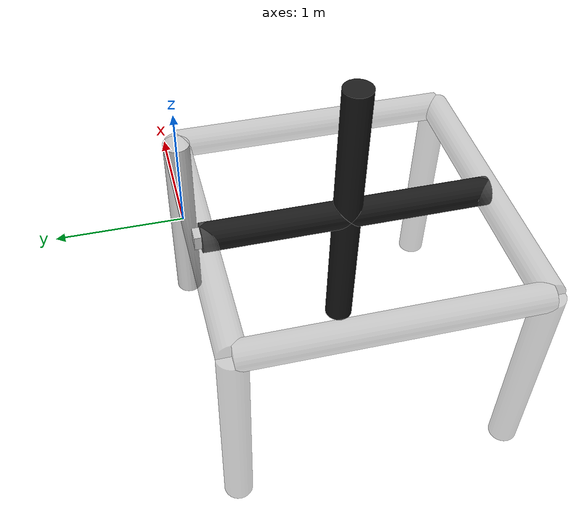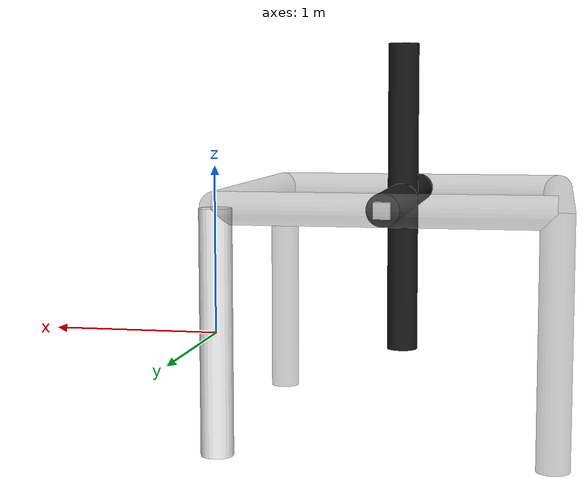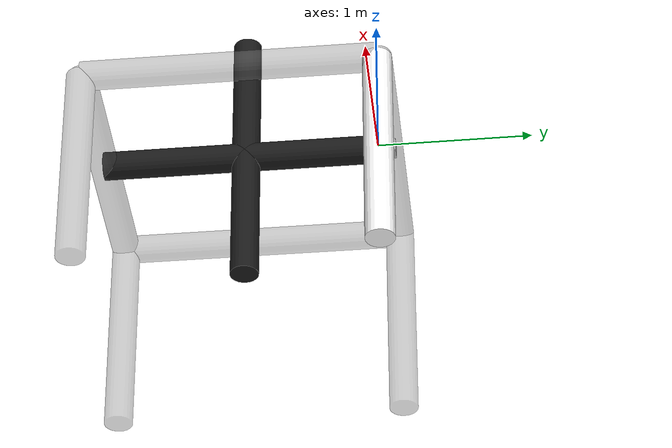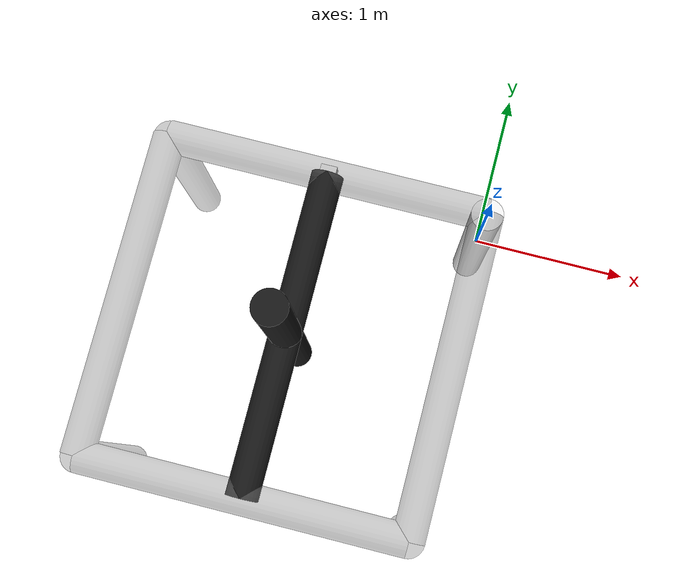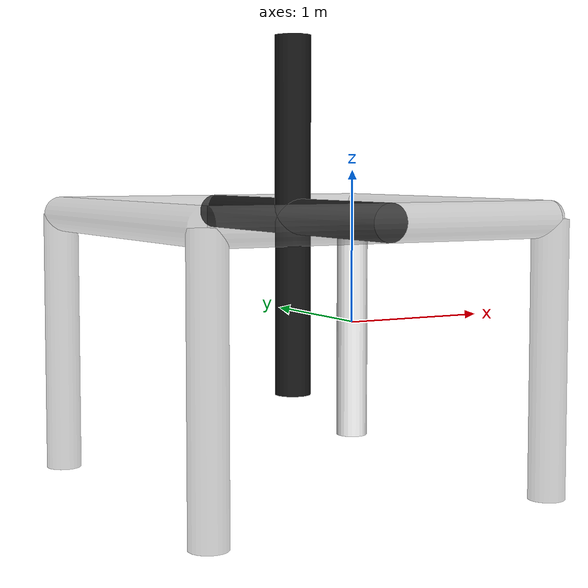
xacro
<?xml version="1.0"?>
<!-- Copyright 2026 CNR-STIIMA -->
<!-- SPDX-License-Identifier: Apache-2.0 -->

<robot xmlns:xacro="http://www.ros.org/wiki/xacro" name="tecnobody_fake">
    <xacro:arg name="initial_positions_file" default="$(find fmrrehab_moveit_config)/config/initial_positions.yaml" />

    <!-- Import tecnobody urdf file -->
    <xacro:include filename="$(find tecnobody_workbench)/urdf/platform_complete_moveit.urdf" />

    <!-- Import control_xacro -->
    <xacro:include filename="tecnobody_fake.ros2_control.xacro" />

    <xacro:tecnobody_ros2_control name="FakeSystem" initial_positions_file="$(arg initial_positions_file)"/>

</robot>

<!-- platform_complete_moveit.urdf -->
<!-- Copyright 2026 CNR-STIIMA -->
<!-- SPDX-License-Identifier: Apache-2.0 -->

<robot name="tecnobody" xmlns:xacro="http://www.ros.org/wiki/xacro">

  <!-- Define materials -->
  <material name="white">
    <color rgba="1 1 1 1"/>
  </material>

  <material name="black">
    <color rgba="0.1 0.1 0.1 1"/>
  </material>

  <material name="red">
    <color rgba="1 0 0 0"/>
  </material>

  <material name="grey_transparent">
    <color rgba="0.5 0.5 0.5 0.4"/>
  </material>

  <link name="world"/>
  <link name="flange_link"/>

  <!--Define fixed structure links-->
  <link name="col1">
    <visual>
      <geometry>
        <cylinder length="1.5" radius="0.1"/>
      </geometry>
      <material name="grey_transparent"/>
    </visual>
  </link>

  <link name="col2">
    <visual>
      <geometry>
        <cylinder length="1.5" radius="0.1"/>
      </geometry>
      <material name="grey_transparent"/>
    </visual>
  </link>

  <link name="col3">
    <visual>
      <geometry>
        <cylinder length="1.5" radius="0.1"/>
      </geometry>
      <material name="grey_transparent"/>
    </visual>
  </link>

  <link name="beam0">
    <visual>
      <geometry>
        <cylinder length="2" radius="0.1"/>
      </geometry>
      <material name="grey_transparent"/>
    </visual>
  </link>

  <link name="beam1">
    <visual>
      <geometry>
        <cylinder length="2" radius="0.1"/>
      </geometry>
      <material name="grey_transparent"/>
    </visual>
  </link>

  <link name="beam2">
    <visual>
      <geometry>
        <cylinder length="2" radius="0.1"/>
      </geometry>
      <material name="grey_transparent"/>
    </visual>
  </link>

  <link name="beam3">
    <visual>
      <geometry>
        <cylinder length="2" radius="0.1"/>
      </geometry>
      <material name="grey_transparent"/>
    </visual>
  </link>

  <!-- Define base_link -->
  <link name="base_link">
    <visual>
      <geometry>
        <cylinder length="1.5" radius="0.1"/>
      </geometry>
      <material name="white"/>
    </visual>
  </link>

  <!-- Define link1 -->
  <link name="link1">
    <visual>
      <geometry>
        <box size="0.1 0.1 0.1"/>
      </geometry>
      <material name="white"/>
    </visual>
  </link>

  <link name="link1_beam">
    <visual>
      <geometry>
        <cylinder length="2" radius="0.1"/>
      </geometry>
      <material name="black"/>
    </visual>
  </link>

  <!-- Define link2 -->
  <link name="link2">
    <visual>
      <geometry>
        <box size="0.1 0.1 0.1"/>
      </geometry>
      <material name="white"/>
    </visual>
  </link>

  <!-- Define link3 -->
  <link name="link3">
    <visual>
      <geometry>
        <cylinder length="2" radius="0.1"/>
      </geometry>
      <material name="black"/>
    </visual>
  </link>

  <!--Define fixed structure joints-->
  <joint name="col1_joint" type="fixed">
    <parent link="world"/>
    <child link="col1"/>
    <origin xyz="-2 0 0" rpy="0 0 1.5707963267948966"/>
  </joint>

  <joint name="col2_joint" type="fixed">
    <parent link="world"/>
    <child link="col2"/>
    <origin xyz="-2 -2 0" rpy="0 0 1.5707963267948966"/>
  </joint>

  <joint name="col3_joint" type="fixed">
    <parent link="world"/>
    <child link="col3"/>
    <origin xyz="0 -2 0" rpy="0 0 1.5707963267948966"/>
  </joint>

  <joint name="beam0_joint" type="fixed">
    <parent link="base_link"/>
    <child link="beam0"/>
    <origin xyz="0 -1 0.75" rpy="1.5707963267948966 0 0"/>
  </joint>

  <joint name="beam1_joint" type="fixed">
    <parent link="col1"/>
    <child link="beam1"/>
    <origin xyz="-1 0 0.75" rpy="0 1.5707963267948966 0"/>
  </joint>

  <joint name="beam2_joint" type="fixed">
    <parent link="col2"/>
    <child link="beam2"/>
    <origin xyz="0 -1 0.75" rpy="1.5707963267948966 0 0"/>
  </joint>

  <joint name="beam3_joint" type="fixed">
    <parent link="col3"/>
    <child link="beam3"/>
    <origin xyz="1 0 0.75" rpy="0 1.5707963267948966 0"/>
  </joint>

  <!-- Define active joints -->
  <joint name="base2world" type="fixed">
    <parent link="world"/>
    <child link="base_link"/>
    <origin xyz="0 0 0" rpy="0 0 -1.5707963267948966"/>
  </joint>

  <joint name="joint_y" type="prismatic">
    <parent link="base_link"/>
    <child link="link1"/>
    <origin xyz="0 -1 0.75" rpy="-1.5707963267948966 0 3.141592653589793"/>
    <axis xyz="0 0 -1"/>
    <limit lower="-1" upper="1" effort="1000" velocity="1" acceleration="0.5"/>
  </joint>

  <joint name="joint_y_fixed" type="fixed">
    <parent link="link1"/>
    <child link="link1_beam"/>
    <origin xyz="-1 0 0" rpy="0 1.5707963267948966 3.141592653589793"/>
  </joint>

  <joint name="joint_x" type="prismatic">
    <parent link="link1_beam"/>
    <child link="link2"/>
    <origin xyz="0 0 0" rpy="0 0 0"/>
    <axis xyz="0 0 1"/>
    <limit lower="-0.8" upper="0.8" effort="1000" velocity="1" acceleration="0.5"/>
  </joint>

  <joint name="joint_z" type="prismatic">
    <parent link="link2"/>
    <child link="link3"/>
    <origin xyz="0 0 0" rpy="-1.5707963267948966 0 0"/>
    <axis xyz="0 0 1"/>
    <limit lower="-0.5" upper="0.2" effort="1000" velocity="1" acceleration="0.5"/>
  </joint>

  <joint name="flange_joint" type="fixed">
    <parent link="link3"/>
    <child link="flange_link"/>
    <origin xyz="0 0 -0.75" rpy="0 3.141592653589793 -1.5707963267948966"/>
  </joint>

</robot>
